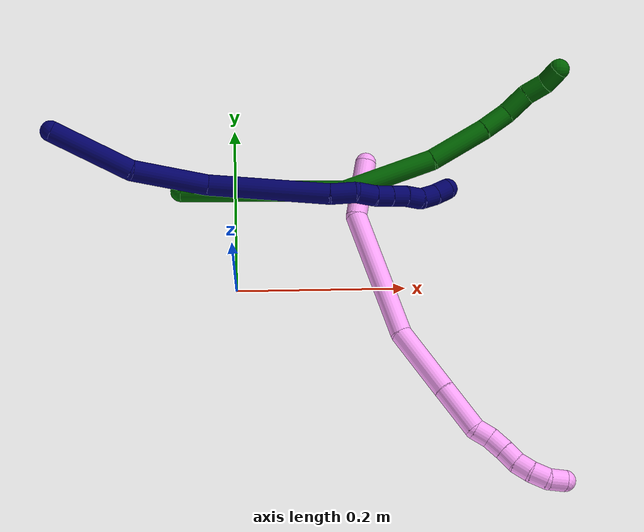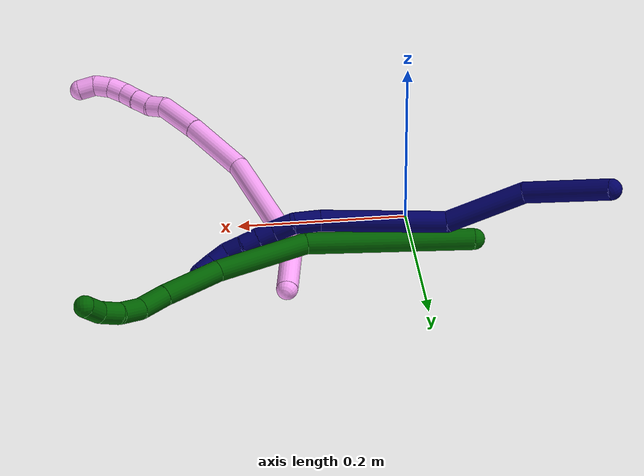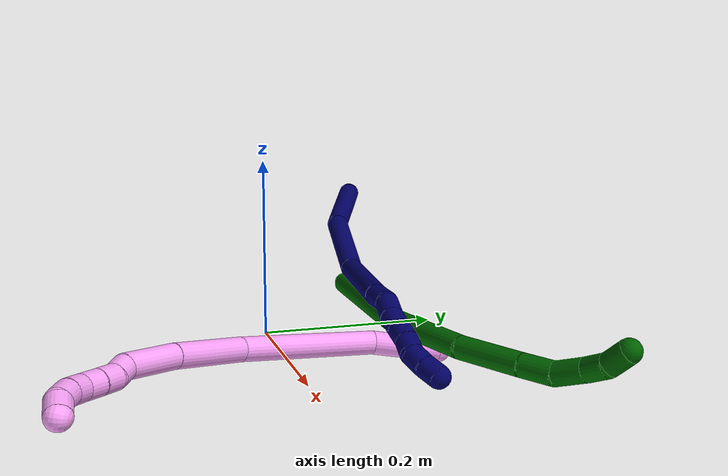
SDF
<sdf version="1.7">
 <world name="default">
  <model name="4">
   <static>0</static>
   <link name="4">
    <collision name="collision-cylinder-e_1_1_4">
     <pose>0.005 -0.005109 -0.035358 2.99808 0.139044 1.5391</pose>
     <geometry><cylinder><radius>0.0125</radius><length>0.072147</length></cylinder></geometry>
     <surface>
      <friction><ode><mu>1.16</mu><mu2>1.16</mu2><slip1>0</slip1><slip2>0</slip2></ode></friction>
      <contact><ode><kp>1e+06</kp><kd>1</kd><max_vel>0</max_vel><min_depth>0.001</min_depth></ode></contact>
     </surface>
    </collision>
    <visual name="visual-cylinder-e_1_1_4">
     <pose>0.005 -0.005109 -0.035358 2.99808 0.139044 1.5391</pose>
     <geometry><cylinder><radius>0.0125</radius><length>0.072147</length></cylinder></geometry>
     <material><ambient>1 0.65098 0.996078 1</ambient></material>
    </visual>
    <collision name="collision-cylinder-e_2_4_5">
     <pose>0.048336 -0.04329 -0.132238 2.64835 0.501971 1.58908</pose>
     <geometry><cylinder><radius>0.0125</radius><length>0.159353</length></cylinder></geometry>
     <surface>
      <friction><ode><mu>1.16</mu><mu2>1.16</mu2><slip1>0</slip1><slip2>0</slip2></ode></friction>
      <contact><ode><kp>1e+06</kp><kd>1</kd><max_vel>0</max_vel><min_depth>0.001</min_depth></ode></contact>
     </surface>
    </collision>
    <visual name="visual-cylinder-e_2_4_5">
     <pose>0.048336 -0.04329 -0.132238 2.64835 0.501971 1.58908</pose>
     <geometry><cylinder><radius>0.0125</radius><length>0.159353</length></cylinder></geometry>
     <material><ambient>1 0.65098 0.996078 1</ambient></material>
    </visual>
    <collision name="collision-cylinder-e_3_5_6">
     <pose>0.111928 -0.101152 -0.218507 2.35535 0.624672 1.32315</pose>
     <geometry><cylinder><radius>0.0125</radius><length>0.086367</length></cylinder></geometry>
     <surface>
      <friction><ode><mu>1.16</mu><mu2>1.16</mu2><slip1>0</slip1><slip2>0</slip2></ode></friction>
      <contact><ode><kp>1e+06</kp><kd>1</kd><max_vel>0</max_vel><min_depth>0.001</min_depth></ode></contact>
     </surface>
    </collision>
    <visual name="visual-cylinder-e_3_5_6">
     <pose>0.111928 -0.101152 -0.218507 2.35535 0.624672 1.32315</pose>
     <geometry><cylinder><radius>0.0125</radius><length>0.086367</length></cylinder></geometry>
     <material><ambient>1 0.65098 0.996078 1</ambient></material>
    </visual>
    <collision name="collision-cylinder-e_4_6_7">
     <pose>0.15622 -0.141344 -0.259545 2.38419 0.704008 1.49084</pose>
     <geometry><cylinder><radius>0.0125</radius><length>0.058821</length></cylinder></geometry>
     <surface>
      <friction><ode><mu>1.16</mu><mu2>1.16</mu2><slip1>0</slip1><slip2>0</slip2></ode></friction>
      <contact><ode><kp>1e+06</kp><kd>1</kd><max_vel>0</max_vel><min_depth>0.001</min_depth></ode></contact>
     </surface>
    </collision>
    <visual name="visual-cylinder-e_4_6_7">
     <pose>0.15622 -0.141344 -0.259545 2.38419 0.704008 1.49084</pose>
     <geometry><cylinder><radius>0.0125</radius><length>0.058821</length></cylinder></geometry>
     <material><ambient>1 0.65098 0.996078 1</ambient></material>
    </visual>
    <collision name="collision-cylinder-e_5_7_8">
     <pose>0.183938 -0.161562 -0.277162 1.83981 1.04863 1.29888</pose>
     <geometry><cylinder><radius>0.0125</radius><length>0.020032</length></cylinder></geometry>
     <surface>
      <friction><ode><mu>1.16</mu><mu2>1.16</mu2><slip1>0</slip1><slip2>0</slip2></ode></friction>
      <contact><ode><kp>1e+06</kp><kd>1</kd><max_vel>0</max_vel><min_depth>0.001</min_depth></ode></contact>
     </surface>
    </collision>
    <visual name="visual-cylinder-e_5_7_8">
     <pose>0.183938 -0.161562 -0.277162 1.83981 1.04863 1.29888</pose>
     <geometry><cylinder><radius>0.0125</radius><length>0.020032</length></cylinder></geometry>
     <material><ambient>1 0.65098 0.996078 1</ambient></material>
    </visual>
    <collision name="collision-cylinder-e_6_8_9">
     <pose>0.200399 -0.172744 -0.282641 2.14859 0.797121 1.32145</pose>
     <geometry><cylinder><radius>0.0125</radius><length>0.021751</length></cylinder></geometry>
     <surface>
      <friction><ode><mu>1.16</mu><mu2>1.16</mu2><slip1>0</slip1><slip2>0</slip2></ode></friction>
      <contact><ode><kp>1e+06</kp><kd>1</kd><max_vel>0</max_vel><min_depth>0.001</min_depth></ode></contact>
     </surface>
    </collision>
    <visual name="visual-cylinder-e_6_8_9">
     <pose>0.200399 -0.172744 -0.282641 2.14859 0.797121 1.32145</pose>
     <geometry><cylinder><radius>0.0125</radius><length>0.021751</length></cylinder></geometry>
     <material><ambient>1 0.65098 0.996078 1</ambient></material>
    </visual>
    <collision name="collision-cylinder-e_7_9_10">
     <pose>0.215303 -0.184718 -0.291266 2.24425 0.781886 1.41609</pose>
     <geometry><cylinder><radius>0.0125</radius><length>0.020222</length></cylinder></geometry>
     <surface>
      <friction><ode><mu>1.16</mu><mu2>1.16</mu2><slip1>0</slip1><slip2>0</slip2></ode></friction>
      <contact><ode><kp>1e+06</kp><kd>1</kd><max_vel>0</max_vel><min_depth>0.001</min_depth></ode></contact>
     </surface>
    </collision>
    <visual name="visual-cylinder-e_7_9_10">
     <pose>0.215303 -0.184718 -0.291266 2.24425 0.781886 1.41609</pose>
     <geometry><cylinder><radius>0.0125</radius><length>0.020222</length></cylinder></geometry>
     <material><ambient>1 0.65098 0.996078 1</ambient></material>
    </visual>
    <collision name="collision-cylinder-e_8_10_11">
     <pose>0.229462 -0.197231 -0.298173 1.90952 0.765454 1.03411</pose>
     <geometry><cylinder><radius>0.0125</radius><length>0.020307</length></cylinder></geometry>
     <surface>
      <friction><ode><mu>1.16</mu><mu2>1.16</mu2><slip1>0</slip1><slip2>0</slip2></ode></friction>
      <contact><ode><kp>1e+06</kp><kd>1</kd><max_vel>0</max_vel><min_depth>0.001</min_depth></ode></contact>
     </surface>
    </collision>
    <visual name="visual-cylinder-e_8_10_11">
     <pose>0.229462 -0.197231 -0.298173 1.90952 0.765454 1.03411</pose>
     <geometry><cylinder><radius>0.0125</radius><length>0.020307</length></cylinder></geometry>
     <material><ambient>1 0.65098 0.996078 1</ambient></material>
    </visual>
    <collision name="collision-cylinder-e_9_11_12">
     <pose>0.244772 -0.210283 -0.301043 1.64169 0.930767 0.988871</pose>
     <geometry><cylinder><radius>0.0125</radius><length>0.020633</length></cylinder></geometry>
     <surface>
      <friction><ode><mu>1.16</mu><mu2>1.16</mu2><slip1>0</slip1><slip2>0</slip2></ode></friction>
      <contact><ode><kp>1e+06</kp><kd>1</kd><max_vel>0</max_vel><min_depth>0.001</min_depth></ode></contact>
     </surface>
    </collision>
    <visual name="visual-cylinder-e_9_11_12">
     <pose>0.244772 -0.210283 -0.301043 1.64169 0.930767 0.988871</pose>
     <geometry><cylinder><radius>0.0125</radius><length>0.020633</length></cylinder></geometry>
     <material><ambient>1 0.65098 0.996078 1</ambient></material>
    </visual>
    <collision name="collision-cylinder-e_10_12_2">
     <pose>0.261858 -0.22022 -0.298061 0.837228 1.0457 0.502035</pose>
     <geometry><cylinder><radius>0.0125</radius><length>0.020366</length></cylinder></geometry>
     <surface>
      <friction><ode><mu>1.16</mu><mu2>1.16</mu2><slip1>0</slip1><slip2>0</slip2></ode></friction>
      <contact><ode><kp>1e+06</kp><kd>1</kd><max_vel>0</max_vel><min_depth>0.001</min_depth></ode></contact>
     </surface>
    </collision>
    <visual name="visual-cylinder-e_10_12_2">
     <pose>0.261858 -0.22022 -0.298061 0.837228 1.0457 0.502035</pose>
     <geometry><cylinder><radius>0.0125</radius><length>0.020366</length></cylinder></geometry>
     <material><ambient>1 0.65098 0.996078 1</ambient></material>
    </visual>
    <collision name="collision-sphere-2">
     <pose>0.27067 -0.224012 -0.294643 0 -0 0</pose>
     <geometry><sphere><radius>0.0125</radius></sphere></geometry>
     <surface>
      <friction><ode><mu>1.16</mu><mu2>1.16</mu2><slip1>0</slip1><slip2>0</slip2></ode></friction>
      <contact><ode><kp>1e+06</kp><kd>1</kd><max_vel>0</max_vel><min_depth>0.001</min_depth></ode></contact>
     </surface>
    </collision>
    <visual name="visual-sphere-2">
     <pose>0.27067 -0.224012 -0.294643 0 -0 0</pose>
     <geometry><sphere><radius>0.0125</radius></sphere></geometry>
     <material><ambient>1 0.65098 0.996078 1</ambient></material>
    </visual>
    <collision name="collision-sphere-12">
     <pose>0.253047 -0.216428 -0.301479 0 -0 0</pose>
     <geometry><sphere><radius>0.0125</radius></sphere></geometry>
     <surface>
      <friction><ode><mu>1.16</mu><mu2>1.16</mu2><slip1>0</slip1><slip2>0</slip2></ode></friction>
      <contact><ode><kp>1e+06</kp><kd>1</kd><max_vel>0</max_vel><min_depth>0.001</min_depth></ode></contact>
     </surface>
    </collision>
    <visual name="visual-sphere-12">
     <pose>0.253047 -0.216428 -0.301479 0 -0 0</pose>
     <geometry><sphere><radius>0.0125</radius></sphere></geometry>
     <material><ambient>1 0.65098 0.996078 1</ambient></material>
    </visual>
    <collision name="collision-sphere-11">
     <pose>0.236498 -0.204137 -0.300606 0 -0 0</pose>
     <geometry><sphere><radius>0.0125</radius></sphere></geometry>
     <surface>
      <friction><ode><mu>1.16</mu><mu2>1.16</mu2><slip1>0</slip1><slip2>0</slip2></ode></friction>
      <contact><ode><kp>1e+06</kp><kd>1</kd><max_vel>0</max_vel><min_depth>0.001</min_depth></ode></contact>
     </surface>
    </collision>
    <visual name="visual-sphere-11">
     <pose>0.236498 -0.204137 -0.300606 0 -0 0</pose>
     <geometry><sphere><radius>0.0125</radius></sphere></geometry>
     <material><ambient>1 0.65098 0.996078 1</ambient></material>
    </visual>
    <collision name="collision-sphere-10">
     <pose>0.222427 -0.190326 -0.29574 0 -0 0</pose>
     <geometry><sphere><radius>0.0125</radius></sphere></geometry>
     <surface>
      <friction><ode><mu>1.16</mu><mu2>1.16</mu2><slip1>0</slip1><slip2>0</slip2></ode></friction>
      <contact><ode><kp>1e+06</kp><kd>1</kd><max_vel>0</max_vel><min_depth>0.001</min_depth></ode></contact>
     </surface>
    </collision>
    <visual name="visual-sphere-10">
     <pose>0.222427 -0.190326 -0.29574 0 -0 0</pose>
     <geometry><sphere><radius>0.0125</radius></sphere></geometry>
     <material><ambient>1 0.65098 0.996078 1</ambient></material>
    </visual>
    <collision name="collision-sphere-9">
     <pose>0.208179 -0.17911 -0.286791 0 -0 0</pose>
     <geometry><sphere><radius>0.0125</radius></sphere></geometry>
     <surface>
      <friction><ode><mu>1.16</mu><mu2>1.16</mu2><slip1>0</slip1><slip2>0</slip2></ode></friction>
      <contact><ode><kp>1e+06</kp><kd>1</kd><max_vel>0</max_vel><min_depth>0.001</min_depth></ode></contact>
     </surface>
    </collision>
    <visual name="visual-sphere-9">
     <pose>0.208179 -0.17911 -0.286791 0 -0 0</pose>
     <geometry><sphere><radius>0.0125</radius></sphere></geometry>
     <material><ambient>1 0.65098 0.996078 1</ambient></material>
    </visual>
    <collision name="collision-sphere-4">
     <pose>0.009999 -0.010219 -0.070716 0 -0 0</pose>
     <geometry><sphere><radius>0.0125</radius></sphere></geometry>
     <surface>
      <friction><ode><mu>1.16</mu><mu2>1.16</mu2><slip1>0</slip1><slip2>0</slip2></ode></friction>
      <contact><ode><kp>1e+06</kp><kd>1</kd><max_vel>0</max_vel><min_depth>0.001</min_depth></ode></contact>
     </surface>
    </collision>
    <visual name="visual-sphere-4">
     <pose>0.009999 -0.010219 -0.070716 0 -0 0</pose>
     <geometry><sphere><radius>0.0125</radius></sphere></geometry>
     <material><ambient>1 0.65098 0.996078 1</ambient></material>
    </visual>
    <collision name="collision-sphere-1">
     <geometry><sphere><radius>0.0125</radius></sphere></geometry>
     <surface>
      <friction><ode><mu>1.16</mu><mu2>1.16</mu2><slip1>0</slip1><slip2>0</slip2></ode></friction>
      <contact><ode><kp>1e+06</kp><kd>1</kd><max_vel>0</max_vel><min_depth>0.001</min_depth></ode></contact>
     </surface>
    </collision>
    <visual name="visual-sphere-1">
     <geometry><sphere><radius>0.0125</radius></sphere></geometry>
     <material><ambient>1 0.65098 0.996078 1</ambient></material>
    </visual>
    <collision name="collision-sphere-8">
     <pose>0.192619 -0.166378 -0.27849 0 -0 0</pose>
     <geometry><sphere><radius>0.0125</radius></sphere></geometry>
     <surface>
      <friction><ode><mu>1.16</mu><mu2>1.16</mu2><slip1>0</slip1><slip2>0</slip2></ode></friction>
      <contact><ode><kp>1e+06</kp><kd>1</kd><max_vel>0</max_vel><min_depth>0.001</min_depth></ode></contact>
     </surface>
    </collision>
    <visual name="visual-sphere-8">
     <pose>0.192619 -0.166378 -0.27849 0 -0 0</pose>
     <geometry><sphere><radius>0.0125</radius></sphere></geometry>
     <material><ambient>1 0.65098 0.996078 1</ambient></material>
    </visual>
    <collision name="collision-sphere-5">
     <pose>0.086673 -0.076362 -0.19376 0 -0 0</pose>
     <geometry><sphere><radius>0.0125</radius></sphere></geometry>
     <surface>
      <friction><ode><mu>1.16</mu><mu2>1.16</mu2><slip1>0</slip1><slip2>0</slip2></ode></friction>
      <contact><ode><kp>1e+06</kp><kd>1</kd><max_vel>0</max_vel><min_depth>0.001</min_depth></ode></contact>
     </surface>
    </collision>
    <visual name="visual-sphere-5">
     <pose>0.086673 -0.076362 -0.19376 0 -0 0</pose>
     <geometry><sphere><radius>0.0125</radius></sphere></geometry>
     <material><ambient>1 0.65098 0.996078 1</ambient></material>
    </visual>
    <collision name="collision-sphere-6">
     <pose>0.137183 -0.125942 -0.243255 0 -0 0</pose>
     <geometry><sphere><radius>0.0125</radius></sphere></geometry>
     <surface>
      <friction><ode><mu>1.16</mu><mu2>1.16</mu2><slip1>0</slip1><slip2>0</slip2></ode></friction>
      <contact><ode><kp>1e+06</kp><kd>1</kd><max_vel>0</max_vel><min_depth>0.001</min_depth></ode></contact>
     </surface>
    </collision>
    <visual name="visual-sphere-6">
     <pose>0.137183 -0.125942 -0.243255 0 -0 0</pose>
     <geometry><sphere><radius>0.0125</radius></sphere></geometry>
     <material><ambient>1 0.65098 0.996078 1</ambient></material>
    </visual>
    <collision name="collision-sphere-7">
     <pose>0.175256 -0.156746 -0.275834 0 -0 0</pose>
     <geometry><sphere><radius>0.0125</radius></sphere></geometry>
     <surface>
      <friction><ode><mu>1.16</mu><mu2>1.16</mu2><slip1>0</slip1><slip2>0</slip2></ode></friction>
      <contact><ode><kp>1e+06</kp><kd>1</kd><max_vel>0</max_vel><min_depth>0.001</min_depth></ode></contact>
     </surface>
    </collision>
    <visual name="visual-sphere-7">
     <pose>0.175256 -0.156746 -0.275834 0 -0 0</pose>
     <geometry><sphere><radius>0.0125</radius></sphere></geometry>
     <material><ambient>1 0.65098 0.996078 1</ambient></material>
    </visual>
    <inertial>
     <pose>0.10872 -0.095751 -0.187378 0 -0 0</pose>
     <mass>0.5</mass>
     <inertia>
      <ixx>0.000431</ixx>
      <ixy>0</ixy>
      <ixz>0</ixz>
      <iyy>0.000491</iyy>
      <iyz>0</iyz>
      <izz>-5.1e-05</izz>
     </inertia>
    </inertial>
   </link>
   <pose>0.156741 0.154099 0.01149 -1.73649 0.668777 -0.485084</pose>
  </model>
  <model name="6">
   <static>0</static>
   <link name="6">
    <collision name="collision-cylinder-e_1_1_4">
     <pose>-0.002797 0.008774 0.097007 -0.090206 -0.028708 0.001296</pose>
     <geometry><cylinder><radius>0.0125</radius><length>0.194886</length></cylinder></geometry>
     <surface>
      <friction><ode><mu>1.16</mu><mu2>1.16</mu2><slip1>0</slip1><slip2>0</slip2></ode></friction>
      <contact><ode><kp>1e+06</kp><kd>1</kd><max_vel>0</max_vel><min_depth>0.001</min_depth></ode></contact>
     </surface>
    </collision>
    <visual name="visual-cylinder-e_1_1_4">
     <pose>-0.002797 0.008774 0.097007 -0.090206 -0.028708 0.001296</pose>
     <geometry><cylinder><radius>0.0125</radius><length>0.194886</length></cylinder></geometry>
     <material><ambient>0 0.392157 0.003922 1</ambient></material>
    </visual>
    <collision name="collision-cylinder-e_2_4_5">
     <pose>0.009979 0.033864 0.244879 -0.310386 0.28368 -0.044675</pose>
     <geometry><cylinder><radius>0.0125</radius><length>0.111283</length></cylinder></geometry>
     <surface>
      <friction><ode><mu>1.16</mu><mu2>1.16</mu2><slip1>0</slip1><slip2>0</slip2></ode></friction>
      <contact><ode><kp>1e+06</kp><kd>1</kd><max_vel>0</max_vel><min_depth>0.001</min_depth></ode></contact>
     </surface>
    </collision>
    <visual name="visual-cylinder-e_2_4_5">
     <pose>0.009979 0.033864 0.244879 -0.310386 0.28368 -0.044675</pose>
     <geometry><cylinder><radius>0.0125</radius><length>0.111283</length></cylinder></geometry>
     <material><ambient>0 0.392157 0.003922 1</ambient></material>
    </visual>
    <collision name="collision-cylinder-e_3_5_6">
     <pose>0.040268 0.065394 0.326053 -0.465242 0.409387 -0.098286</pose>
     <geometry><cylinder><radius>0.0125</radius><length>0.073938</length></cylinder></geometry>
     <surface>
      <friction><ode><mu>1.16</mu><mu2>1.16</mu2><slip1>0</slip1><slip2>0</slip2></ode></friction>
      <contact><ode><kp>1e+06</kp><kd>1</kd><max_vel>0</max_vel><min_depth>0.001</min_depth></ode></contact>
     </surface>
    </collision>
    <visual name="visual-cylinder-e_3_5_6">
     <pose>0.040268 0.065394 0.326053 -0.465242 0.409387 -0.098286</pose>
     <geometry><cylinder><radius>0.0125</radius><length>0.073938</length></cylinder></geometry>
     <material><ambient>0 0.392157 0.003922 1</ambient></material>
    </visual>
    <collision name="collision-cylinder-e_4_6_7">
     <pose>0.063084 0.088441 0.369844 -0.526245 0.479161 -0.131409</pose>
     <geometry><cylinder><radius>0.0125</radius><length>0.03514</length></cylinder></geometry>
     <surface>
      <friction><ode><mu>1.16</mu><mu2>1.16</mu2><slip1>0</slip1><slip2>0</slip2></ode></friction>
      <contact><ode><kp>1e+06</kp><kd>1</kd><max_vel>0</max_vel><min_depth>0.001</min_depth></ode></contact>
     </surface>
    </collision>
    <visual name="visual-cylinder-e_4_6_7">
     <pose>0.063084 0.088441 0.369844 -0.526245 0.479161 -0.131409</pose>
     <geometry><cylinder><radius>0.0125</radius><length>0.03514</length></cylinder></geometry>
     <material><ambient>0 0.392157 0.003922 1</ambient></material>
    </visual>
    <collision name="collision-cylinder-e_5_7_8">
     <pose>0.07505 0.107753 0.394319 -0.807105 0.238575 -0.102265</pose>
     <geometry><cylinder><radius>0.0125</radius><length>0.032716</length></cylinder></geometry>
     <surface>
      <friction><ode><mu>1.16</mu><mu2>1.16</mu2><slip1>0</slip1><slip2>0</slip2></ode></friction>
      <contact><ode><kp>1e+06</kp><kd>1</kd><max_vel>0</max_vel><min_depth>0.001</min_depth></ode></contact>
     </surface>
    </collision>
    <visual name="visual-cylinder-e_5_7_8">
     <pose>0.07505 0.107753 0.394319 -0.807105 0.238575 -0.102265</pose>
     <geometry><cylinder><radius>0.0125</radius><length>0.032716</length></cylinder></geometry>
     <material><ambient>0 0.392157 0.003922 1</ambient></material>
    </visual>
    <collision name="collision-cylinder-e_6_8_9">
     <pose>0.078897 0.127306 0.415857 -0.653368 -0.001429 0.000484</pose>
     <geometry><cylinder><radius>0.0125</radius><length>0.026563</length></cylinder></geometry>
     <surface>
      <friction><ode><mu>1.16</mu><mu2>1.16</mu2><slip1>0</slip1><slip2>0</slip2></ode></friction>
      <contact><ode><kp>1e+06</kp><kd>1</kd><max_vel>0</max_vel><min_depth>0.001</min_depth></ode></contact>
     </surface>
    </collision>
    <visual name="visual-cylinder-e_6_8_9">
     <pose>0.078897 0.127306 0.415857 -0.653368 -0.001429 0.000484</pose>
     <geometry><cylinder><radius>0.0125</radius><length>0.026563</length></cylinder></geometry>
     <material><ambient>0 0.392157 0.003922 1</ambient></material>
    </visual>
    <collision name="collision-cylinder-e_7_9_2">
     <pose>0.077103 0.146009 0.433193 -1.00236 -0.139799 0.076675</pose>
     <geometry><cylinder><radius>0.0125</radius><length>0.025475</length></cylinder></geometry>
     <surface>
      <friction><ode><mu>1.16</mu><mu2>1.16</mu2><slip1>0</slip1><slip2>0</slip2></ode></friction>
      <contact><ode><kp>1e+06</kp><kd>1</kd><max_vel>0</max_vel><min_depth>0.001</min_depth></ode></contact>
     </surface>
    </collision>
    <visual name="visual-cylinder-e_7_9_2">
     <pose>0.077103 0.146009 0.433193 -1.00236 -0.139799 0.076675</pose>
     <geometry><cylinder><radius>0.0125</radius><length>0.025475</length></cylinder></geometry>
     <material><ambient>0 0.392157 0.003922 1</ambient></material>
    </visual>
    <collision name="collision-sphere-2">
     <pose>0.075328 0.156639 0.439983 0 -0 0</pose>
     <geometry><sphere><radius>0.0125</radius></sphere></geometry>
     <surface>
      <friction><ode><mu>1.16</mu><mu2>1.16</mu2><slip1>0</slip1><slip2>0</slip2></ode></friction>
      <contact><ode><kp>1e+06</kp><kd>1</kd><max_vel>0</max_vel><min_depth>0.001</min_depth></ode></contact>
     </surface>
    </collision>
    <visual name="visual-sphere-2">
     <pose>0.075328 0.156639 0.439983 0 -0 0</pose>
     <geometry><sphere><radius>0.0125</radius></sphere></geometry>
     <material><ambient>0 0.392157 0.003922 1</ambient></material>
    </visual>
    <collision name="collision-sphere-9">
     <pose>0.078878 0.13538 0.426403 0 -0 0</pose>
     <geometry><sphere><radius>0.0125</radius></sphere></geometry>
     <surface>
      <friction><ode><mu>1.16</mu><mu2>1.16</mu2><slip1>0</slip1><slip2>0</slip2></ode></friction>
      <contact><ode><kp>1e+06</kp><kd>1</kd><max_vel>0</max_vel><min_depth>0.001</min_depth></ode></contact>
     </surface>
    </collision>
    <visual name="visual-sphere-9">
     <pose>0.078878 0.13538 0.426403 0 -0 0</pose>
     <geometry><sphere><radius>0.0125</radius></sphere></geometry>
     <material><ambient>0 0.392157 0.003922 1</ambient></material>
    </visual>
    <collision name="collision-sphere-4">
     <pose>-0.005594 0.017549 0.194014 0 -0 0</pose>
     <geometry><sphere><radius>0.0125</radius></sphere></geometry>
     <surface>
      <friction><ode><mu>1.16</mu><mu2>1.16</mu2><slip1>0</slip1><slip2>0</slip2></ode></friction>
      <contact><ode><kp>1e+06</kp><kd>1</kd><max_vel>0</max_vel><min_depth>0.001</min_depth></ode></contact>
     </surface>
    </collision>
    <visual name="visual-sphere-4">
     <pose>-0.005594 0.017549 0.194014 0 -0 0</pose>
     <geometry><sphere><radius>0.0125</radius></sphere></geometry>
     <material><ambient>0 0.392157 0.003922 1</ambient></material>
    </visual>
    <collision name="collision-sphere-1">
     <geometry><sphere><radius>0.0125</radius></sphere></geometry>
     <surface>
      <friction><ode><mu>1.16</mu><mu2>1.16</mu2><slip1>0</slip1><slip2>0</slip2></ode></friction>
      <contact><ode><kp>1e+06</kp><kd>1</kd><max_vel>0</max_vel><min_depth>0.001</min_depth></ode></contact>
     </surface>
    </collision>
    <visual name="visual-sphere-1">
     <geometry><sphere><radius>0.0125</radius></sphere></geometry>
     <material><ambient>0 0.392157 0.003922 1</ambient></material>
    </visual>
    <collision name="collision-sphere-8">
     <pose>0.078916 0.119233 0.405311 0 -0 0</pose>
     <geometry><sphere><radius>0.0125</radius></sphere></geometry>
     <surface>
      <friction><ode><mu>1.16</mu><mu2>1.16</mu2><slip1>0</slip1><slip2>0</slip2></ode></friction>
      <contact><ode><kp>1e+06</kp><kd>1</kd><max_vel>0</max_vel><min_depth>0.001</min_depth></ode></contact>
     </surface>
    </collision>
    <visual name="visual-sphere-8">
     <pose>0.078916 0.119233 0.405311 0 -0 0</pose>
     <geometry><sphere><radius>0.0125</radius></sphere></geometry>
     <material><ambient>0 0.392157 0.003922 1</ambient></material>
    </visual>
    <collision name="collision-sphere-5">
     <pose>0.025553 0.050179 0.295744 0 -0 0</pose>
     <geometry><sphere><radius>0.0125</radius></sphere></geometry>
     <surface>
      <friction><ode><mu>1.16</mu><mu2>1.16</mu2><slip1>0</slip1><slip2>0</slip2></ode></friction>
      <contact><ode><kp>1e+06</kp><kd>1</kd><max_vel>0</max_vel><min_depth>0.001</min_depth></ode></contact>
     </surface>
    </collision>
    <visual name="visual-sphere-5">
     <pose>0.025553 0.050179 0.295744 0 -0 0</pose>
     <geometry><sphere><radius>0.0125</radius></sphere></geometry>
     <material><ambient>0 0.392157 0.003922 1</ambient></material>
    </visual>
    <collision name="collision-sphere-6">
     <pose>0.054984 0.080609 0.356363 0 -0 0</pose>
     <geometry><sphere><radius>0.0125</radius></sphere></geometry>
     <surface>
      <friction><ode><mu>1.16</mu><mu2>1.16</mu2><slip1>0</slip1><slip2>0</slip2></ode></friction>
      <contact><ode><kp>1e+06</kp><kd>1</kd><max_vel>0</max_vel><min_depth>0.001</min_depth></ode></contact>
     </surface>
    </collision>
    <visual name="visual-sphere-6">
     <pose>0.054984 0.080609 0.356363 0 -0 0</pose>
     <geometry><sphere><radius>0.0125</radius></sphere></geometry>
     <material><ambient>0 0.392157 0.003922 1</ambient></material>
    </visual>
    <collision name="collision-sphere-7">
     <pose>0.071185 0.096272 0.383326 0 -0 0</pose>
     <geometry><sphere><radius>0.0125</radius></sphere></geometry>
     <surface>
      <friction><ode><mu>1.16</mu><mu2>1.16</mu2><slip1>0</slip1><slip2>0</slip2></ode></friction>
      <contact><ode><kp>1e+06</kp><kd>1</kd><max_vel>0</max_vel><min_depth>0.001</min_depth></ode></contact>
     </surface>
    </collision>
    <visual name="visual-sphere-7">
     <pose>0.071185 0.096272 0.383326 0 -0 0</pose>
     <geometry><sphere><radius>0.0125</radius></sphere></geometry>
     <material><ambient>0 0.392157 0.003922 1</ambient></material>
    </visual>
    <inertial>
     <pose>0.02455 0.048096 0.236485 0 -0 0</pose>
     <mass>0.5</mass>
     <inertia>
      <ixx>0.000783</ixx>
      <ixy>0</ixy>
      <ixz>0</ixz>
      <iyy>0.000783</iyy>
      <iyz>0</iyz>
      <izz>-0.000114</izz>
     </inertia>
    </inertial>
   </link>
   <pose>-0.06414 0.113897 0.037128 1.65112 0.783894 1.56178</pose>
  </model>
  <model name="7">
   <static>0</static>
   <link name="7">
    <collision name="collision-cylinder-e_1_1_4">
     <pose>0.044758 0.019982 0.016665 -0.875677 1.04421 -0.526213</pose>
     <geometry><cylinder><radius>0.0125</radius><length>0.103543</length></cylinder></geometry>
     <surface>
      <friction><ode><mu>1.16</mu><mu2>1.16</mu2><slip1>0</slip1><slip2>0</slip2></ode></friction>
      <contact><ode><kp>1e+06</kp><kd>1</kd><max_vel>0</max_vel><min_depth>0.001</min_depth></ode></contact>
     </surface>
    </collision>
    <visual name="visual-cylinder-e_1_1_4">
     <pose>0.044758 0.019982 0.016665 -0.875677 1.04421 -0.526213</pose>
     <geometry><cylinder><radius>0.0125</radius><length>0.103543</length></cylinder></geometry>
     <material><ambient>0.003922 0 0.403922 1</ambient></material>
    </visual>
    <collision name="collision-cylinder-e_2_4_5">
     <pose>0.119781 0.063826 0.06142 -0.704162 0.687514 -0.261527</pose>
     <geometry><cylinder><radius>0.0125</radius><length>0.095382</length></cylinder></geometry>
     <surface>
      <friction><ode><mu>1.16</mu><mu2>1.16</mu2><slip1>0</slip1><slip2>0</slip2></ode></friction>
      <contact><ode><kp>1e+06</kp><kd>1</kd><max_vel>0</max_vel><min_depth>0.001</min_depth></ode></contact>
     </surface>
    </collision>
    <visual name="visual-cylinder-e_2_4_5">
     <pose>0.119781 0.063826 0.06142 -0.704162 0.687514 -0.261527</pose>
     <geometry><cylinder><radius>0.0125</radius><length>0.095382</length></cylinder></geometry>
     <material><ambient>0.003922 0 0.403922 1</ambient></material>
    </visual>
    <collision name="collision-cylinder-e_3_5_6">
     <pose>0.207564 0.095148 0.133522 -0.167942 0.910804 -0.082394</pose>
     <geometry><cylinder><radius>0.0125</radius><length>0.145614</length></cylinder></geometry>
     <surface>
      <friction><ode><mu>1.16</mu><mu2>1.16</mu2><slip1>0</slip1><slip2>0</slip2></ode></friction>
      <contact><ode><kp>1e+06</kp><kd>1</kd><max_vel>0</max_vel><min_depth>0.001</min_depth></ode></contact>
     </surface>
    </collision>
    <visual name="visual-cylinder-e_3_5_6">
     <pose>0.207564 0.095148 0.133522 -0.167942 0.910804 -0.082394</pose>
     <geometry><cylinder><radius>0.0125</radius><length>0.145614</length></cylinder></geometry>
     <material><ambient>0.003922 0 0.403922 1</ambient></material>
    </visual>
    <collision name="collision-cylinder-e_4_6_7">
     <pose>0.275561 0.104349 0.188593 -0.155987 0.752342 -0.061717</pose>
     <geometry><cylinder><radius>0.0125</radius><length>0.030672</length></cylinder></geometry>
     <surface>
      <friction><ode><mu>1.16</mu><mu2>1.16</mu2><slip1>0</slip1><slip2>0</slip2></ode></friction>
      <contact><ode><kp>1e+06</kp><kd>1</kd><max_vel>0</max_vel><min_depth>0.001</min_depth></ode></contact>
     </surface>
    </collision>
    <visual name="visual-cylinder-e_4_6_7">
     <pose>0.275561 0.104349 0.188593 -0.155987 0.752342 -0.061717</pose>
     <geometry><cylinder><radius>0.0125</radius><length>0.030672</length></cylinder></geometry>
     <material><ambient>0.003922 0 0.403922 1</ambient></material>
    </visual>
    <collision name="collision-cylinder-e_5_7_8">
     <pose>0.293619 0.11213 0.206862 -0.697567 0.678215 -0.25515</pose>
     <geometry><cylinder><radius>0.0125</radius><length>0.024157</length></cylinder></geometry>
     <surface>
      <friction><ode><mu>1.16</mu><mu2>1.16</mu2><slip1>0</slip1><slip2>0</slip2></ode></friction>
      <contact><ode><kp>1e+06</kp><kd>1</kd><max_vel>0</max_vel><min_depth>0.001</min_depth></ode></contact>
     </surface>
    </collision>
    <visual name="visual-cylinder-e_5_7_8">
     <pose>0.293619 0.11213 0.206862 -0.697567 0.678215 -0.25515</pose>
     <geometry><cylinder><radius>0.0125</radius><length>0.024157</length></cylinder></geometry>
     <material><ambient>0.003922 0 0.403922 1</ambient></material>
    </visual>
    <collision name="collision-cylinder-e_6_8_9">
     <pose>0.306728 0.122792 0.221298 -0.568776 0.57266 -0.171702</pose>
     <geometry><cylinder><radius>0.0125</radius><length>0.020414</length></cylinder></geometry>
     <surface>
      <friction><ode><mu>1.16</mu><mu2>1.16</mu2><slip1>0</slip1><slip2>0</slip2></ode></friction>
      <contact><ode><kp>1e+06</kp><kd>1</kd><max_vel>0</max_vel><min_depth>0.001</min_depth></ode></contact>
     </surface>
    </collision>
    <visual name="visual-cylinder-e_6_8_9">
     <pose>0.306728 0.122792 0.221298 -0.568776 0.57266 -0.171702</pose>
     <geometry><cylinder><radius>0.0125</radius><length>0.020414</length></cylinder></geometry>
     <material><ambient>0.003922 0 0.403922 1</ambient></material>
    </visual>
    <collision name="collision-cylinder-e_7_9_10">
     <pose>0.317471 0.131966 0.235784 -0.560243 0.54661 -0.16094</pose>
     <geometry><cylinder><radius>0.0125</radius><length>0.020058</length></cylinder></geometry>
     <surface>
      <friction><ode><mu>1.16</mu><mu2>1.16</mu2><slip1>0</slip1><slip2>0</slip2></ode></friction>
      <contact><ode><kp>1e+06</kp><kd>1</kd><max_vel>0</max_vel><min_depth>0.001</min_depth></ode></contact>
     </surface>
    </collision>
    <visual name="visual-cylinder-e_7_9_10">
     <pose>0.317471 0.131966 0.235784 -0.560243 0.54661 -0.16094</pose>
     <geometry><cylinder><radius>0.0125</radius><length>0.020058</length></cylinder></geometry>
     <material><ambient>0.003922 0 0.403922 1</ambient></material>
    </visual>
    <collision name="collision-cylinder-e_8_10_11">
     <pose>0.328653 0.141868 0.24906 -0.72672 0.637896 -0.249822</pose>
     <geometry><cylinder><radius>0.0125</radius><length>0.020046</length></cylinder></geometry>
     <surface>
      <friction><ode><mu>1.16</mu><mu2>1.16</mu2><slip1>0</slip1><slip2>0</slip2></ode></friction>
      <contact><ode><kp>1e+06</kp><kd>1</kd><max_vel>0</max_vel><min_depth>0.001</min_depth></ode></contact>
     </surface>
    </collision>
    <visual name="visual-cylinder-e_8_10_11">
     <pose>0.328653 0.141868 0.24906 -0.72672 0.637896 -0.249822</pose>
     <geometry><cylinder><radius>0.0125</radius><length>0.020046</length></cylinder></geometry>
     <material><ambient>0.003922 0 0.403922 1</ambient></material>
    </visual>
    <collision name="collision-cylinder-e_9_11_12">
     <pose>0.337465 0.151542 0.263692 -0.46517 0.286835 -0.068386</pose>
     <geometry><cylinder><radius>0.0125</radius><length>0.020099</length></cylinder></geometry>
     <surface>
      <friction><ode><mu>1.16</mu><mu2>1.16</mu2><slip1>0</slip1><slip2>0</slip2></ode></friction>
      <contact><ode><kp>1e+06</kp><kd>1</kd><max_vel>0</max_vel><min_depth>0.001</min_depth></ode></contact>
     </surface>
    </collision>
    <visual name="visual-cylinder-e_9_11_12">
     <pose>0.337465 0.151542 0.263692 -0.46517 0.286835 -0.068386</pose>
     <geometry><cylinder><radius>0.0125</radius><length>0.020099</length></cylinder></geometry>
     <material><ambient>0.003922 0 0.403922 1</ambient></material>
    </visual>
    <collision name="collision-cylinder-e_10_12_2">
     <pose>0.342221 0.159592 0.281396 -0.389013 0.192327 -0.038001</pose>
     <geometry><cylinder><radius>0.0125</radius><length>0.020016</length></cylinder></geometry>
     <surface>
      <friction><ode><mu>1.16</mu><mu2>1.16</mu2><slip1>0</slip1><slip2>0</slip2></ode></friction>
      <contact><ode><kp>1e+06</kp><kd>1</kd><max_vel>0</max_vel><min_depth>0.001</min_depth></ode></contact>
     </surface>
    </collision>
    <visual name="visual-cylinder-e_10_12_2">
     <pose>0.342221 0.159592 0.281396 -0.389013 0.192327 -0.038001</pose>
     <geometry><cylinder><radius>0.0125</radius><length>0.020016</length></cylinder></geometry>
     <material><ambient>0.003922 0 0.403922 1</ambient></material>
    </visual>
    <collision name="collision-sphere-2">
     <pose>0.344134 0.163317 0.290486 0 -0 0</pose>
     <geometry><sphere><radius>0.0125</radius></sphere></geometry>
     <surface>
      <friction><ode><mu>1.16</mu><mu2>1.16</mu2><slip1>0</slip1><slip2>0</slip2></ode></friction>
      <contact><ode><kp>1e+06</kp><kd>1</kd><max_vel>0</max_vel><min_depth>0.001</min_depth></ode></contact>
     </surface>
    </collision>
    <visual name="visual-sphere-2">
     <pose>0.344134 0.163317 0.290486 0 -0 0</pose>
     <geometry><sphere><radius>0.0125</radius></sphere></geometry>
     <material><ambient>0.003922 0 0.403922 1</ambient></material>
    </visual>
    <collision name="collision-sphere-12">
     <pose>0.340308 0.155866 0.272307 0 -0 0</pose>
     <geometry><sphere><radius>0.0125</radius></sphere></geometry>
     <surface>
      <friction><ode><mu>1.16</mu><mu2>1.16</mu2><slip1>0</slip1><slip2>0</slip2></ode></friction>
      <contact><ode><kp>1e+06</kp><kd>1</kd><max_vel>0</max_vel><min_depth>0.001</min_depth></ode></contact>
     </surface>
    </collision>
    <visual name="visual-sphere-12">
     <pose>0.340308 0.155866 0.272307 0 -0 0</pose>
     <geometry><sphere><radius>0.0125</radius></sphere></geometry>
     <material><ambient>0.003922 0 0.403922 1</ambient></material>
    </visual>
    <collision name="collision-sphere-11">
     <pose>0.334622 0.147218 0.255077 0 -0 0</pose>
     <geometry><sphere><radius>0.0125</radius></sphere></geometry>
     <surface>
      <friction><ode><mu>1.16</mu><mu2>1.16</mu2><slip1>0</slip1><slip2>0</slip2></ode></friction>
      <contact><ode><kp>1e+06</kp><kd>1</kd><max_vel>0</max_vel><min_depth>0.001</min_depth></ode></contact>
     </surface>
    </collision>
    <visual name="visual-sphere-11">
     <pose>0.334622 0.147218 0.255077 0 -0 0</pose>
     <geometry><sphere><radius>0.0125</radius></sphere></geometry>
     <material><ambient>0.003922 0 0.403922 1</ambient></material>
    </visual>
    <collision name="collision-sphere-10">
     <pose>0.322684 0.136518 0.243042 0 -0 0</pose>
     <geometry><sphere><radius>0.0125</radius></sphere></geometry>
     <surface>
      <friction><ode><mu>1.16</mu><mu2>1.16</mu2><slip1>0</slip1><slip2>0</slip2></ode></friction>
      <contact><ode><kp>1e+06</kp><kd>1</kd><max_vel>0</max_vel><min_depth>0.001</min_depth></ode></contact>
     </surface>
    </collision>
    <visual name="visual-sphere-10">
     <pose>0.322684 0.136518 0.243042 0 -0 0</pose>
     <geometry><sphere><radius>0.0125</radius></sphere></geometry>
     <material><ambient>0.003922 0 0.403922 1</ambient></material>
    </visual>
    <collision name="collision-sphere-9">
     <pose>0.312258 0.127413 0.228526 0 -0 0</pose>
     <geometry><sphere><radius>0.0125</radius></sphere></geometry>
     <surface>
      <friction><ode><mu>1.16</mu><mu2>1.16</mu2><slip1>0</slip1><slip2>0</slip2></ode></friction>
      <contact><ode><kp>1e+06</kp><kd>1</kd><max_vel>0</max_vel><min_depth>0.001</min_depth></ode></contact>
     </surface>
    </collision>
    <visual name="visual-sphere-9">
     <pose>0.312258 0.127413 0.228526 0 -0 0</pose>
     <geometry><sphere><radius>0.0125</radius></sphere></geometry>
     <material><ambient>0.003922 0 0.403922 1</ambient></material>
    </visual>
    <collision name="collision-sphere-4">
     <pose>0.089515 0.039965 0.03333 0 -0 0</pose>
     <geometry><sphere><radius>0.0125</radius></sphere></geometry>
     <surface>
      <friction><ode><mu>1.16</mu><mu2>1.16</mu2><slip1>0</slip1><slip2>0</slip2></ode></friction>
      <contact><ode><kp>1e+06</kp><kd>1</kd><max_vel>0</max_vel><min_depth>0.001</min_depth></ode></contact>
     </surface>
    </collision>
    <visual name="visual-sphere-4">
     <pose>0.089515 0.039965 0.03333 0 -0 0</pose>
     <geometry><sphere><radius>0.0125</radius></sphere></geometry>
     <material><ambient>0.003922 0 0.403922 1</ambient></material>
    </visual>
    <collision name="collision-sphere-1">
     <geometry><sphere><radius>0.0125</radius></sphere></geometry>
     <surface>
      <friction><ode><mu>1.16</mu><mu2>1.16</mu2><slip1>0</slip1><slip2>0</slip2></ode></friction>
      <contact><ode><kp>1e+06</kp><kd>1</kd><max_vel>0</max_vel><min_depth>0.001</min_depth></ode></contact>
     </surface>
    </collision>
    <visual name="visual-sphere-1">
     <geometry><sphere><radius>0.0125</radius></sphere></geometry>
     <material><ambient>0.003922 0 0.403922 1</ambient></material>
    </visual>
    <collision name="collision-sphere-8">
     <pose>0.301197 0.118172 0.21407 0 -0 0</pose>
     <geometry><sphere><radius>0.0125</radius></sphere></geometry>
     <surface>
      <friction><ode><mu>1.16</mu><mu2>1.16</mu2><slip1>0</slip1><slip2>0</slip2></ode></friction>
      <contact><ode><kp>1e+06</kp><kd>1</kd><max_vel>0</max_vel><min_depth>0.001</min_depth></ode></contact>
     </surface>
    </collision>
    <visual name="visual-sphere-8">
     <pose>0.301197 0.118172 0.21407 0 -0 0</pose>
     <geometry><sphere><radius>0.0125</radius></sphere></geometry>
     <material><ambient>0.003922 0 0.403922 1</ambient></material>
    </visual>
    <collision name="collision-sphere-5">
     <pose>0.150047 0.087687 0.089511 0 -0 0</pose>
     <geometry><sphere><radius>0.0125</radius></sphere></geometry>
     <surface>
      <friction><ode><mu>1.16</mu><mu2>1.16</mu2><slip1>0</slip1><slip2>0</slip2></ode></friction>
      <contact><ode><kp>1e+06</kp><kd>1</kd><max_vel>0</max_vel><min_depth>0.001</min_depth></ode></contact>
     </surface>
    </collision>
    <visual name="visual-sphere-5">
     <pose>0.150047 0.087687 0.089511 0 -0 0</pose>
     <geometry><sphere><radius>0.0125</radius></sphere></geometry>
     <material><ambient>0.003922 0 0.403922 1</ambient></material>
    </visual>
    <collision name="collision-sphere-6">
     <pose>0.265081 0.10261 0.177532 0 -0 0</pose>
     <geometry><sphere><radius>0.0125</radius></sphere></geometry>
     <surface>
      <friction><ode><mu>1.16</mu><mu2>1.16</mu2><slip1>0</slip1><slip2>0</slip2></ode></friction>
      <contact><ode><kp>1e+06</kp><kd>1</kd><max_vel>0</max_vel><min_depth>0.001</min_depth></ode></contact>
     </surface>
    </collision>
    <visual name="visual-sphere-6">
     <pose>0.265081 0.10261 0.177532 0 -0 0</pose>
     <geometry><sphere><radius>0.0125</radius></sphere></geometry>
     <material><ambient>0.003922 0 0.403922 1</ambient></material>
    </visual>
    <collision name="collision-sphere-7">
     <pose>0.28604 0.106089 0.199653 0 -0 0</pose>
     <geometry><sphere><radius>0.0125</radius></sphere></geometry>
     <surface>
      <friction><ode><mu>1.16</mu><mu2>1.16</mu2><slip1>0</slip1><slip2>0</slip2></ode></friction>
      <contact><ode><kp>1e+06</kp><kd>1</kd><max_vel>0</max_vel><min_depth>0.001</min_depth></ode></contact>
     </surface>
    </collision>
    <visual name="visual-sphere-7">
     <pose>0.28604 0.106089 0.199653 0 -0 0</pose>
     <geometry><sphere><radius>0.0125</radius></sphere></geometry>
     <material><ambient>0.003922 0 0.403922 1</ambient></material>
    </visual>
    <inertial>
     <pose>0.189357 0.084318 0.12596 0 -0 0</pose>
     <mass>0.5</mass>
     <inertia>
      <ixx>0.000243</ixx>
      <ixy>0</ixy>
      <ixz>0</ixz>
      <iyy>0.000381</iyy>
      <iyz>0</iyz>
      <izz>-0.000431</izz>
     </inertia>
    </inertial>
   </link>
   <pose>-0.211062 0.161849 0.124345 -1.61935 -0.190129 -0.742754</pose>
  </model>
 </world>
</sdf>
